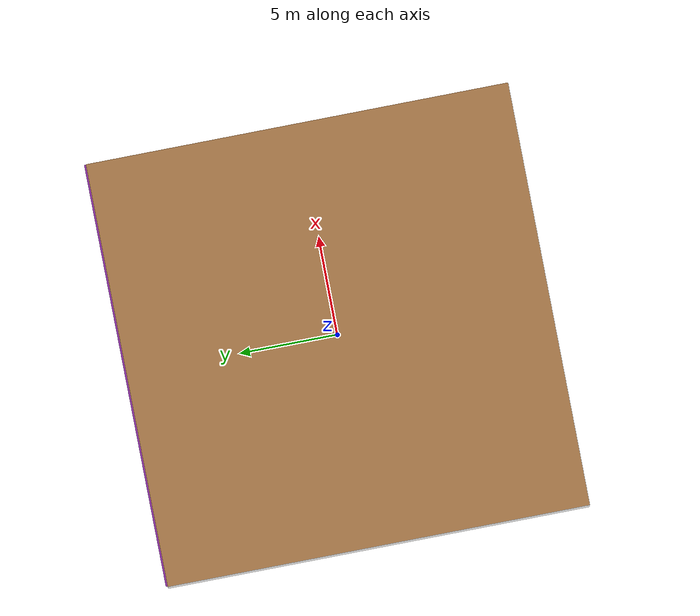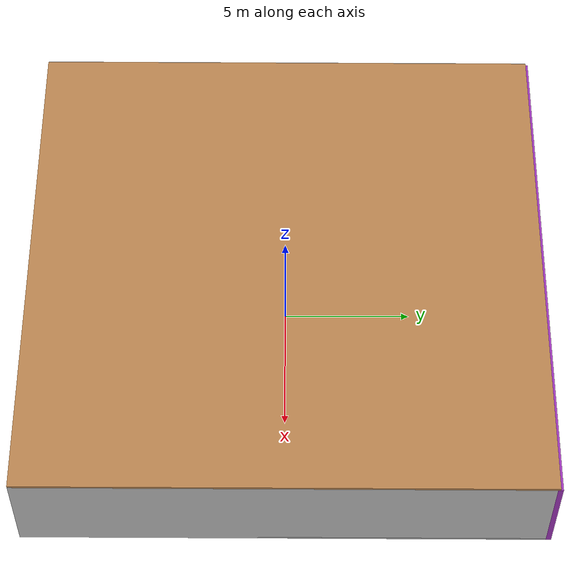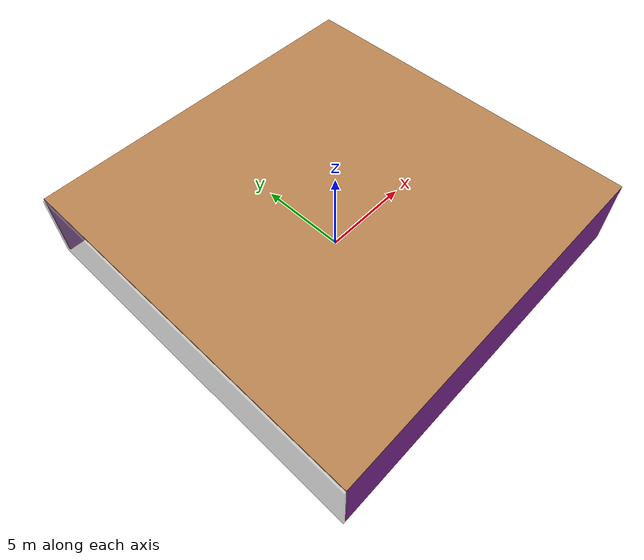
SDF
<sdf version="1.4">
 <world name="default">
  <physics type="ode">
   <max_step_size>0.001</max_step_size>
   <real_time_factor>1</real_time_factor>
   <real_time_update_rate>1000</real_time_update_rate>
   <gravity>0 0 -9.8</gravity>
  </physics>
  <scene><ambient>0.4 0.4 0.4 1</ambient><background>0.7 0.7 0.7 1</background><shadows>1</shadows></scene>
  <model name="Surrounding">
   <static>1</static>
   <link name="Ceiling">
    <collision name="Ceiling_Collision"><geometry><box><size>20 20 0.1</size></box></geometry></collision>
    <visual name="Ceiling_Visual">
     <geometry><box><size>20 20 0.1</size></box></geometry>
     <material>
      <script><uri>file://media/materials/scripts/gazebo.material</uri><name>Gazebo/WoodPallet</name></script>
     </material>
    </visual>
    <pose>0 0 4.05 0 0 0</pose>
   </link>
   <link name="Wall_South">
    <collision name="Wall_South_Collision">
     <geometry><box><size>20 0 4</size></box></geometry>
     <pose>0 0 2 0 -0 0</pose>
    </collision>
    <visual name="Wall_South_Visual">
     <pose>0 0 2 0 -0 0</pose>
     <geometry><box><size>20 0 4</size></box></geometry>
     <material>
      <script><uri>file://media/materials/scripts/gazebo.material</uri><name>Gazebo/Purple</name></script>
     </material>
    </visual>
    <velocity_decay><linear>0</linear><angular>0</angular></velocity_decay>
    <pose>0 -10 0 0 -0 0</pose>
   </link>
   <link name="Wall_East">
    <collision name="Wall_21_Collision">
     <geometry><box><size>20 0 4</size></box></geometry>
     <pose>0 0 2 0 -0 0</pose>
    </collision>
    <visual name="Wall_21_Visual">
     <pose>0 0 2 0 -0 0</pose>
     <geometry><box><size>20 0 4</size></box></geometry>
     <material>
      <script><uri>file://media/materials/scripts/gazebo.material</uri><name>Gazebo/LightOn</name></script>
     </material>
    </visual>
    <velocity_decay><linear>0</linear><angular>0</angular></velocity_decay>
    <pose>10 0 0 0 -0 1.5708</pose>
   </link>
   <link name="Wall_North">
    <collision name="Wall_22_Collision">
     <geometry><box><size>20 0.2 4</size></box></geometry>
     <pose>0 0 2 0 -0 0</pose>
    </collision>
    <visual name="Wall_22_Visual">
     <pose>0 0 2 0 -0 0</pose>
     <geometry><box><size>20 0.2 4</size></box></geometry>
     <material>
      <script><uri>file://media/materials/scripts/gazebo.material</uri><name>Gazebo/Purple</name></script>
     </material>
    </visual>
    <velocity_decay><linear>0</linear><angular>0</angular></velocity_decay>
    <pose>0 10 0 0 -0 0</pose>
   </link>
   <link name="Wall_West">
    <collision name="Wall_23_Collision">
     <geometry><box><size>20 0.2 4</size></box></geometry>
     <pose>0 0 2 0 -0 0</pose>
    </collision>
    <visual name="Wall_23_Visual">
     <pose>0 0 2 0 -0 0</pose>
     <geometry><box><size>20 0.2 4</size></box></geometry>
     <material>
      <script><uri>file://media/materials/scripts/gazebo.material</uri><name>Gazebo/GreyTransparent</name></script>
     </material>
    </visual>
    <velocity_decay><linear>0</linear><angular>0</angular></velocity_decay>
    <pose>-10 0 0 0 0 -1.5708</pose>
   </link>
   <link name="Ground_link">
    <collision name="collision">
     <pose>0 0 .05 0 -0 0</pose>
     <geometry><box><size>20 20 0.1</size></box></geometry>
    </collision>
    <visual name="visual">
     <pose>0 0 .05 0 -0 0</pose>
     <geometry><box><size>20 20 0.1</size></box></geometry>
     <material>
      <script><uri>file://media/materials/scripts/gazebo.material</uri><name>Gazebo/GreyTransparent</name></script>
     </material>
    </visual>
   </link>
   <static>1</static>
  </model>
  <spherical_coordinates>
   <surface_model>EARTH_WGS84</surface_model>
   <latitude_deg>0</latitude_deg>
   <longitude_deg>0</longitude_deg>
   <elevation>0</elevation>
   <heading_deg>0</heading_deg>
  </spherical_coordinates>
  <light name="lightball_0" type="diffuse">
   <diffuse>0.8 0.8 0.8 1</diffuse>
   <specular>0.2 0.2 0.2 1</specular>
   <attenuation>
    <range>100</range>
    <constant>0.7</constant>
    <linear>0.01</linear>
    <quadratic>0.001</quadratic>
   </attenuation>
   <direction>-0.5 0.1 -0.9</direction>
   <pose>-8.84681454623 -2.45481003343 2.38220098319 0 0 0</pose>
  </light>
  <light name="lightball_1" type="diffuse">
   <diffuse>0.8 0.8 0.8 1</diffuse>
   <specular>0.2 0.2 0.2 1</specular>
   <attenuation>
    <range>100</range>
    <constant>0.7</constant>
    <linear>0.01</linear>
    <quadratic>0.001</quadratic>
   </attenuation>
   <direction>-0.5 0.1 -0.9</direction>
   <pose>0.759973109513 7.00467120322 1.4718574583 0 0 0</pose>
  </light>
  <light name="lightball_2" type="diffuse">
   <diffuse>0.8 0.8 0.8 1</diffuse>
   <specular>0.2 0.2 0.2 1</specular>
   <attenuation>
    <range>100</range>
    <constant>0.7</constant>
    <linear>0.01</linear>
    <quadratic>0.001</quadratic>
   </attenuation>
   <direction>-0.5 0.1 -0.9</direction>
   <pose>-0.279234509766 -5.60576499531 2.36980742373 0 0 0</pose>
  </light>
  <light name="lightball_3" type="diffuse">
   <diffuse>0.8 0.8 0.8 1</diffuse>
   <specular>0.2 0.2 0.2 1</specular>
   <attenuation>
    <range>100</range>
    <constant>0.7</constant>
    <linear>0.01</linear>
    <quadratic>0.001</quadratic>
   </attenuation>
   <direction>-0.5 0.1 -0.9</direction>
   <pose>3.21186409997 6.46306710427 0.917977437281 0 0 0</pose>
  </light>
  <light name="lightball_4" type="diffuse">
   <diffuse>0.8 0.8 0.8 1</diffuse>
   <specular>0.2 0.2 0.2 1</specular>
   <attenuation>
    <range>100</range>
    <constant>0.7</constant>
    <linear>0.01</linear>
    <quadratic>0.001</quadratic>
   </attenuation>
   <direction>-0.5 0.1 -0.9</direction>
   <pose>-3.25211604088 -5.85076775977 0.788359452677 0 0 0</pose>
  </light>
  <light name="lightball_5" type="diffuse">
   <diffuse>0.8 0.8 0.8 1</diffuse>
   <specular>0.2 0.2 0.2 1</specular>
   <attenuation>
    <range>100</range>
    <constant>0.7</constant>
    <linear>0.01</linear>
    <quadratic>0.001</quadratic>
   </attenuation>
   <direction>-0.5 0.1 -0.9</direction>
   <pose>-6.53915111213 -5.03505123659 3.29223100154 0 0 0</pose>
  </light>
  <light name="lightball_6" type="diffuse">
   <diffuse>0.8 0.8 0.8 1</diffuse>
   <specular>0.2 0.2 0.2 1</specular>
   <attenuation>
    <range>100</range>
    <constant>0.7</constant>
    <linear>0.01</linear>
    <quadratic>0.001</quadratic>
   </attenuation>
   <direction>-0.5 0.1 -0.9</direction>
   <pose>6.83194552563 3.97855350028 1.81390480211 0 0 0</pose>
  </light>
  <include><uri>model://cabinet</uri><pose>-4.70868618354 -4.41642876519 0 0 0 1.65170071421</pose></include>
  <include>
   <uri>model://textured_shapes</uri>
   <pose>1.19845074858 4.66336753728 0 0 0 2.31120542995</pose>
  </include>
  <include><uri>model://cabinet</uri><pose>5.32304223033 -4.51404083614 0 0 0 1.40060814805</pose></include>
  <include><uri>model://cabinet</uri><pose>4.56537043973 0.742157145512 0 0 0 1.03946390365</pose></include>
  <include>
   <uri>model://construction_cone</uri>
   <pose>5.69843654663 3.64910056994 0 0 0 0.0367296702287</pose>
  </include>
 </world>
</sdf>

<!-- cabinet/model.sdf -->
<sdf version="1.5">
  <model name="cabinet">
    <static>true</static>
    <link name="cabinet_bottom_plate">
      <inertial>
        <pose>0 0 -1 0 0 0</pose>
        <inertia>
          <ixx>2.050000</ixx>
          <ixy>0</ixy>
          <ixz>0</ixz>
          <iyy>2.050000</iyy>
          <iyz>0</iyz>
          <izz>2.050000</izz>
        </inertia>
        <mass>25.000000</mass>
      </inertial>
      <collision name="cabinet_bottom_plate_geom">
        <pose>0 0 0.010000 0 0 0</pose>
        <geometry>
          <box>
            <size>0.450000 0.450000 0.020000</size>
          </box>
        </geometry>
      </collision>
      <visual name="cabinet_bottom_plate_geom_visual">
        <pose>0 0 0.010000 0 0 0</pose>
        <geometry>
          <box>
            <size>0.450000 0.450000 0.020000</size>
          </box>
        </geometry>
        <material>
          <script>
            <uri>model://media/materials/scripts/gazebo.material</uri>
            <name>Gazebo/Wood</name>
          </script>
        </material>
      </visual>
      <collision name="cabinet_bottom_plate_geom_cabinet_back_plate">
        <pose>0.235000 0 0.510000 0 0 0</pose>
        <geometry>
          <box>
            <size>0.020000 0.450000 1.020000</size>
          </box>
        </geometry>
      </collision>
      <visual name="cabinet_bottom_plate_geom_cabinet_back_plate_visual">
        <pose>0.235000 0 0.510000 0 0 0</pose>
        <geometry>
          <box>
            <size>0.020000 0.450000 1.020000</size>
          </box>
        </geometry>
        <material>
          <script>
            <uri>model://media/materials/scripts/gazebo.material</uri>
            <name>Gazebo/Wood</name>
          </script>
        </material>
      </visual>
      <collision name="cabinet_bottom_plate_geom_cabinet_left_plate">
        <pose>0 0.235000 0.510000 0 0 0</pose>
        <geometry>
          <box>
            <size>0.450000 0.020000 1.020000</size>
          </box>
        </geometry>
      </collision>
      <visual name="cabinet_bottom_plate_geom_cabinet_left_plate_visual">
        <pose>0 0.235000 0.510000 0 0 0</pose>
        <geometry>
          <box>
            <size>0.450000 0.020000 1.020000</size>
          </box>
        </geometry>
        <material>
          <script>
            <uri>model://media/materials/scripts/gazebo.material</uri>
            <name>Gazebo/Wood</name>
          </script>
        </material>
      </visual>
      <collision name="cabinet_bottom_plate_geom_cabinet_middle_plate">
        <pose>0 0 0.510000 0 0 0</pose>
        <geometry>
          <box>
            <size>0.450000 0.450000 0.020000</size>
          </box>
        </geometry>
      </collision>
      <visual name="cabinet_bottom_plate_geom_cabinet_middle_plate_visual">
        <pose>0 0 0.510000 0 0 0</pose>
        <geometry>
          <box>
            <size>0.450000 0.450000 0.020000</size>
          </box>
        </geometry>
        <material>
          <script>
            <uri>model://media/materials/scripts/gazebo.material</uri>
            <name>Gazebo/Wood</name>
          </script>
        </material>
      </visual>
      <collision name="cabinet_bottom_plate_geom_cabinet_right_plate">
        <pose>0 -0.235000 0.510000 0 0 0</pose>
        <geometry>
          <box>
            <size>0.450000 0.020000 1.020000</size>
          </box>
        </geometry>
      </collision>
      <visual name="cabinet_bottom_plate_geom_cabinet_right_plate_visual">
        <pose>0 -0.235000 0.510000 0 0 0</pose>
        <geometry>
          <box>
            <size>0.450000 0.020000 1.020000</size>
          </box>
        </geometry>
        <material>
          <script>
            <uri>model://media/materials/scripts/gazebo.material</uri>
            <name>Gazebo/Wood</name>
          </script>
        </material>
      </visual>
      <collision name="cabinet_bottom_plate_geom_cabinet_top_plate">
        <pose>0 0 1.010000 0 0 0</pose>
        <geometry>
          <box>
            <size>0.450000 0.450000 0.020000</size>
          </box>
        </geometry>
      </collision>
      <visual name="cabinet_bottom_plate_geom_cabinet_top_plate_visual">
        <pose>0 0 1.010000 0 0 0</pose>
        <geometry>
          <box>
            <size>0.450000 0.450000 0.020000</size>
          </box>
        </geometry>
        <material>
          <script>
            <uri>model://media/materials/scripts/gazebo.material</uri>
            <name>Gazebo/Wood</name>
          </script>
        </material>
      </visual>
    </link>
  </model>
</sdf>

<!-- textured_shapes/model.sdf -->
<sdf version="1.6">
  <model name="textured_shapes">
    <pose>0 0 0.5 0 0 0</pose>
    <link name="box">
      <pose>0 -1.5 0 0 0 0</pose>
      <collision name="collision">
        <geometry>
          <box>
            <size>1 1 1</size>
          </box>
        </geometry>
      </collision>
      <visual name="visual">
        <geometry>
          <box>
            <size>1 1 1</size>
          </box>
        </geometry>
        <material>
          <script>
            <uri>model://../model_source/models/textured_shapes/materials/scripts</uri>
            <uri>model://../model_source/models/textured_shapes/materials/textures</uri>
            <name>TexturedShape/Squares</name>
          </script>
        </material>
      </visual>
    </link>
    <link name="sphere">
      <collision name="collision">
        <geometry>
          <sphere>
            <radius>0.5</radius>
          </sphere>
        </geometry>
      </collision>
      <visual name="visual">
        <geometry>
          <sphere>
            <radius>0.5</radius>
          </sphere>
        </geometry>
        <material>
          <script>
            <uri>model://../model_source/models/textured_shapes/materials/scripts</uri>
            <uri>model://../model_source/models/textured_shapes/materials/textures</uri>
            <name>TexturedShape/Squares</name>
          </script>
        </material>
      </visual>
    </link>
    <link name="cylinder">
      <pose>0 1.5 0 0 0 0</pose>
      <collision name="collision">
        <geometry>
          <cylinder>
            <radius>0.5</radius>
            <length>1</length>
          </cylinder>
        </geometry>
      </collision>
      <visual name="visual">
        <geometry>
          <cylinder>
            <radius>0.5</radius>
            <length>1</length>
          </cylinder>
        </geometry>
        <material>
          <script>
            <uri>model://../model_source/models/textured_shapes/materials/scripts</uri>
            <uri>model://../model_source/models/textured_shapes/materials/textures</uri>
            <name>TexturedShape/Squares</name>
          </script>
        </material>
      </visual>
    </link>
  </model>
</sdf>

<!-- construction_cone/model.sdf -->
<sdf version="1.5">
  <model name="Construction Cone">
    <link name="link">
      <collision name="collision">
        <geometry>
          <mesh>
            <scale>10 10 10</scale>
            <uri>file://isr-testbed/construction_cone/meshes/construction_cone.dae</uri>
          </mesh>
        </geometry>
      </collision>
      <visual name="visual">
        <geometry>
          <mesh>
            <scale>10 10 10</scale>
            <uri>file://isr-testbed/construction_cone/meshes/construction_cone.dae</uri>
          </mesh>
        </geometry>
      </visual>
    </link>
  </model>
</sdf>
